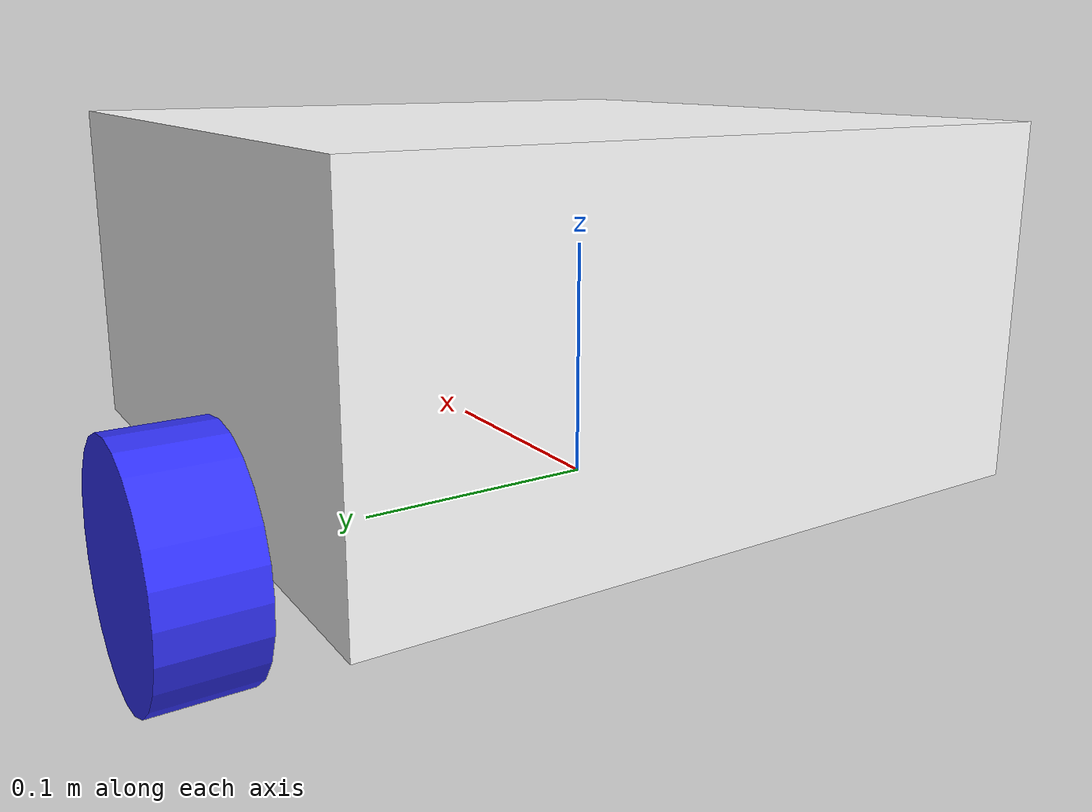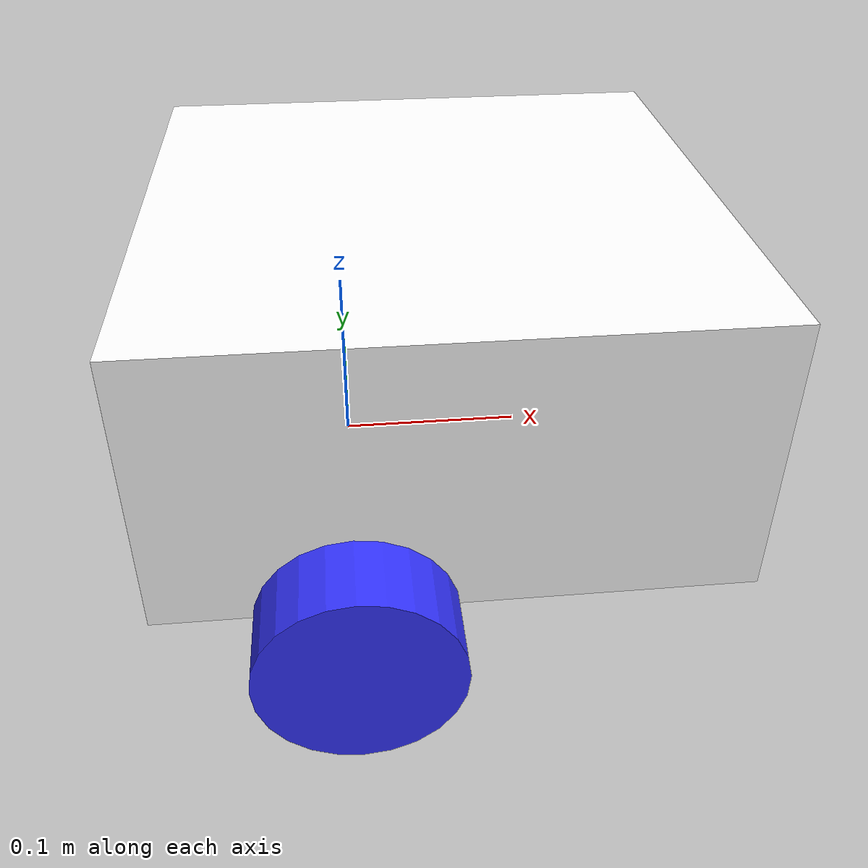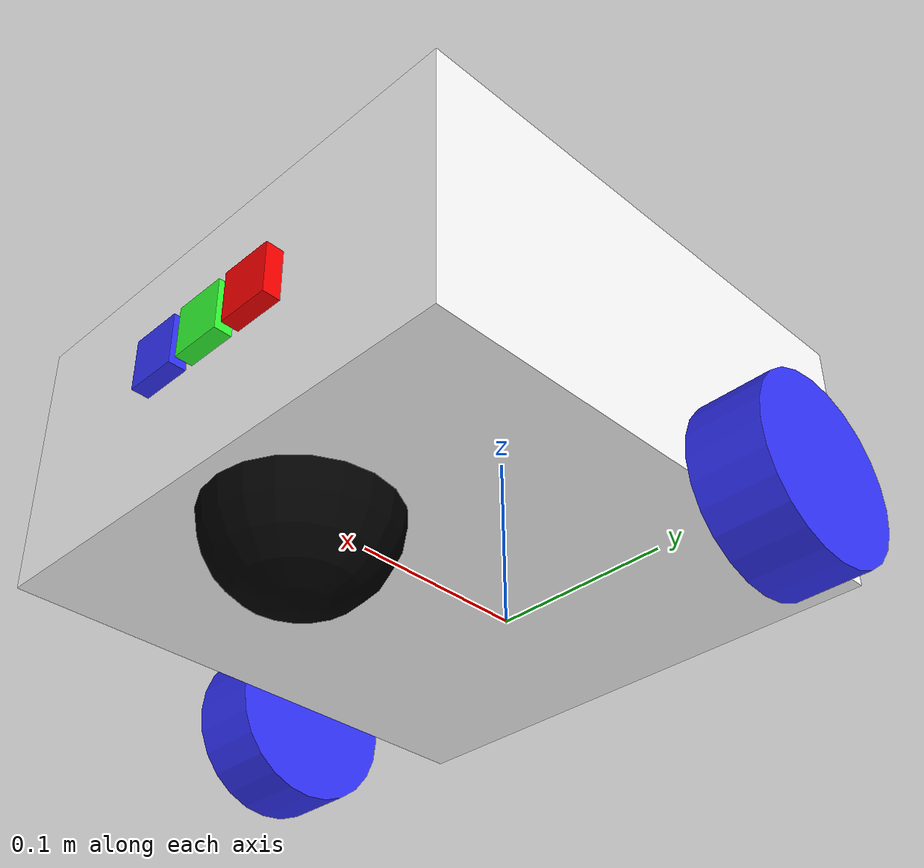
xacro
<?xml version="1.0"?>
<robot xmlns:xacro="http://www.ros.org/wiki/xacro"  name="robot">

    <xacro:arg name="use_ros2_control" default="true" />

    <xacro:include filename="robot_core.xacro" />
    <xacro:include filename="stereo_camera.xacro" />
    <xacro:include filename="depth_camera.xacro" />

    <xacro:if value="$(arg use_ros2_control)">
        <xacro:include filename="ros2_control.xacro" />
    </xacro:if>

    <xacro:unless value="$(arg use_ros2_control)">
        <xacro:include filename="gazebo_control.xacro" />
    </xacro:unless>

</robot>

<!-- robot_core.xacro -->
<robot xmlns:xacro="http://www.ros.org/wiki/xacro" >

    <xacro:include filename="inertial_macros.xacro"/>

    <material name="white">
        <color rgba="1 1 1 1" />
    </material>

    <material name="orange">
        <color rgba="1 0.3 0.1 1"/>
    </material>

    <material name="blue">
        <color rgba="0.2 0.2 1 1"/>
    </material>

    <material name="black">
        <color rgba="0 0 0 1"/>
    </material>

    <material name="red">
        <color rgba="1 0 0 1"/>
    </material>

    <material name="green">
        <color rgba="0.2 1 0.2 1"/>
    </material>

    <!-- BASE LINK -->

    <link name="base_link">

    </link>

    <link name="base_footprint"></link>

    <joint name="footprint_joint" type="fixed">
        <parent link="base_link" />
        <child link="base_footprint" />
        <origin xyz="0 0 0" rpy="0 0 0" />
    </joint>

    <!-- CHASSIS LINK -->

    <joint name="chassis_joint" type="fixed">
        <parent link="base_link"/>
        <child link="chassis"/>
        <origin xyz="-0.1 0 0"/>
    </joint>

    <link name="chassis">
        <visual>
            <origin xyz="0.15 0 0.075"/>
            <geometry>
                <box size="0.3 0.3 0.15"/>
            </geometry>
            <material name="white"/>
        </visual>
        <collision>
            <origin xyz="0.15 0 0.075"/>
            <geometry>
                <box size="0.3 0.3 0.15"/>
            </geometry>
        </collision>
        <xacro:inertial_box mass="0.5" x="0.3" y="0.3" z="0.15">
            <origin xyz="0.15 0 0.075" rpy="0 0 0"/>
        </xacro:inertial_box>
    </link>

    <gazebo reference="chassis">
        <material>Gazebo/White</material>
    </gazebo>

    <!-- LEFT WHEEL LINK -->

    <joint name="left_wheel_joint" type="continuous">
        <parent link="base_link"/>
        <child link="left_wheel"/>
        <origin xyz="0 0.175 0" rpy="-${pi/2} 0 0" />
        <axis xyz="0 0 1"/>
    </joint>

    <link name="left_wheel">
        <visual>
            <geometry>
                <cylinder radius="0.05" length="0.04"/>
            </geometry>
            <material name="blue"/>
        </visual>
        <collision>
            <geometry>
                <sphere radius="0.05" length="0.04"/>
            </geometry>
        </collision>
        <xacro:inertial_cylinder mass="0.1" length="0.04" radius="0.05">
            <origin xyz="0 0 0" rpy="0 0 0"/>
        </xacro:inertial_cylinder>
    </link>

    <gazebo reference="left_wheel">
        <material>Gazebo/Blue</material>
    </gazebo>

    <!-- RIGHT WHEEL LINK -->

    <joint name="right_wheel_joint" type="continuous">
        <parent link="base_link"/>
        <child link="right_wheel"/>
        <origin xyz="0 -0.175 0" rpy="${pi/2} 0 0" />
        <axis xyz="0 0 -1"/>
    </joint>

    <link name="right_wheel">
        <visual>
            <geometry>
                <cylinder radius="0.05" length="0.04"/>
            </geometry>
            <material name="blue"/>
        </visual>
        <collision>
            <geometry>
                <sphere radius="0.05" length="0.04"/>
            </geometry>
        </collision>
        <xacro:inertial_cylinder mass="0.1" length="0.04" radius="0.05">
            <origin xyz="0 0 0" rpy="0 0 0"/>
        </xacro:inertial_cylinder>
    </link>

    <gazebo reference="right_wheel">
        <material>Gazebo/Blue</material>
    </gazebo>

    <!-- CASTER WHEEL LINK -->

    <joint name="caster_wheel_joint" type="fixed">
        <parent link="chassis"/>
        <child link="caster_wheel"/>
        <origin xyz="0.24 0 0"/>
    </joint>

    <link name="caster_wheel">
        <visual>
            <geometry>
                <sphere radius="0.05"/>
            </geometry>
            <material name="black"/>
        </visual>
        <collision>
            <geometry>
                <sphere radius="0.05"/>
            </geometry>
        </collision>
        <xacro:inertial_sphere mass="0.1" radius="0.05">
            <origin xyz="0 0 0" rpy="0 0 0"/>
        </xacro:inertial_sphere>
    </link>

    <gazebo reference="caster_wheel">
        <material>Gazebo/Black</material>
        <mu1 value="0.001"/>
        <mu2 value="0.001"/>
    </gazebo>

</robot>

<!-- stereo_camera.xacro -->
<robot xmlns:xacro="http://www.ros.org/wiki/xacro">

    <link name="camera_link"></link>

    <joint name="camera_joint" type="fixed">
        <parent link="chassis" />
        <child link="camera_link" />
        <origin xyz="0.305 0 0.08" rpy="0 0 0" />
    </joint>

    <link name="left_camera_link">
        <visual>
            <geometry>
                <box size="0.010 0.03 0.03" />
            </geometry>
            <material name="red" />
        </visual>
    </link>

    <link name="right_camera_link">
        <visual>
            <geometry>
                <box size="0.010 0.03 0.03" />
            </geometry>
            <material name="blue" />
        </visual>
    </link>

    <link name="imu_link">
        <visual>
            <geometry>
                <box size="0.010 0.03 0.03" />
            </geometry>
            <material name="green" />
        </visual>
    </link>

    <joint name="imu_joint" type="fixed">
        <parent link="camera_link" />
        <child link="imu_link" />
        <origin xyz="0 0 0" rpy="0 0 0" />
    </joint>

    <joint name="left_camera_joint" type="fixed">
        <parent link="camera_link" />
        <child link="left_camera_link" />
        <origin xyz="0 0.035 0" rpy="0 0 0" />
    </joint>

    <joint name="right_camera_joint" type="fixed">
        <parent link="camera_link" />
        <child link="right_camera_link" />
        <origin xyz="0 -0.035 0" rpy="0 0 0" />
    </joint>

    <link name="left_camera_link_optical"></link>
    <link name="right_camera_link_optical"></link>

    <joint name="left_camera_optical_joint" type="fixed">
        <parent link="left_camera_link" />
        <child link="left_camera_link_optical" />
        <origin xyz="0 0 0" rpy="${-pi/2} 0 ${-pi/2}" />
    </joint>

    <joint name="right_camera_optical_joint" type="fixed">
        <parent link="right_camera_link" />
        <child link="right_camera_link_optical" />
        <origin xyz="0 0 0" rpy="${-pi/2} 0 ${-pi/2}" />
    </joint>

    <gazebo reference="left_camera_link">
        <material>Gazebo/Red</material>

        <sensor name="left_camera" type="camera">
            <pose>0 0 0 0 0 0 </pose>
            <visualize>true</visualize>
            <update_rate>60</update_rate>
            <camera>
                <horizontal_fov>1.089</horizontal_fov>
                <image>
                    <format>R8G8B8</format>
                    <width>640</width>
                    <height>480</height>
                </image>
                <clip>
                    <near>0.05</near>
                    <far>8.0</far>
                </clip>
            </camera>
            <plugin name="left_camera_controller" filename="libgazebo_ros_camera.so">
                <frame_name>left_camera_link_optical</frame_name>
            </plugin>
        </sensor>
    </gazebo>

    <gazebo reference="right_camera_link">
        <material>Gazebo/Blue</material>

        <sensor name="right_camera" type="camera">
            <pose>0 0 0 0 0 0 </pose>
            <visualize>true</visualize>
            <update_rate>60</update_rate>
            <camera>
                <horizontal_fov>1.089</horizontal_fov>
                <image>
                    <format>R8G8B8</format>
                    <width>640</width>
                    <height>480</height>
                </image>
                <clip>
                    <near>0.05</near>
                    <far>8.0</far>
                </clip>
            </camera>
            <plugin name="right_camera_controller" filename="libgazebo_ros_camera.so">
                <frame_name>right_camera_link_optical</frame_name>
            </plugin>
        </sensor>
    </gazebo>

    <gazebo reference="imu_link">
        <gravity>true</gravity>

        <sensor name="imu_sensor" type="imu">
            <always_on>true</always_on>
            <update_rate>100</update_rate>
            <visualize>true</visualize>
            <plugin filename="libgazebo_ros_imu_sensor.so" name="realsense_imu">
                <topic>imu</topic>
                <bodyName>imu_link</bodyName>
                <updateRateHZ>10.0</updateRateHZ>
                <gaussianNoise>0.0</gaussianNoise>
                <xyzOffset>0 0 0</xyzOffset>
                <rpyOffset>0 0 0</rpyOffset>
                <frameName>imu_link</frameName>
                <initialOrientationAsReference>false</initialOrientationAsReference>
            </plugin>
            <pose>0 0 0 0 0 0</pose>
        </sensor>
    </gazebo>

</robot>

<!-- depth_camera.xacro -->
<robot xmlns:xacro="http://www.ros.org/wiki/xacro">

    <joint name="depth_camera_joint" type="fixed">
        <parent link="chassis" />
        <child link="depth_camera_link" />
        <origin xyz="0.305 0 0.08" rpy="0 0 0" />
    </joint>

    <link name="depth_camera_link">
        <visual>
            <geometry>
                <box size="0.010 0.03 0.03" />
            </geometry>
            <material name="red" />
        </visual>
    </link>

    <joint name="depth_camera_optical_joint" type="fixed">
        <parent link="depth_camera_link" />
        <child link="depth_camera_link_optical" />
        <origin xyz="0 0 0" rpy="${-pi/2} 0 ${-pi/2}" />
    </joint>

    <link name="depth_camera_link_optical"></link>

    <gazebo reference="camera_link">
        <material>Gazebo/Red</material>

        <sensor name="depth_camera" type="depth">
            <pose>0 0 0 0 0 0 </pose>
            <visualize>true</visualize>
            <update_rate>10</update_rate>
            <camera>
                <horizontal_fov>1.089</horizontal_fov>
                <image>
                    <format>B8G8R8</format>
                    <width>640</width>
                    <height>480</height>
                </image>
                <clip>
                    <near>0.05</near>
                    <far>8.0</far>
                </clip>
            </camera>
            <plugin name="camera_controller" filename="libgazebo_ros_camera.so">
                <frame_name>depth_camera_link_optical</frame_name>
                <min_depth>0.1</min_depth>
                <max_depth>100.0</max_depth>
            </plugin>
        </sensor>
    </gazebo>

</robot>
